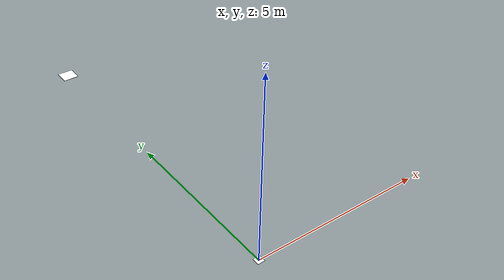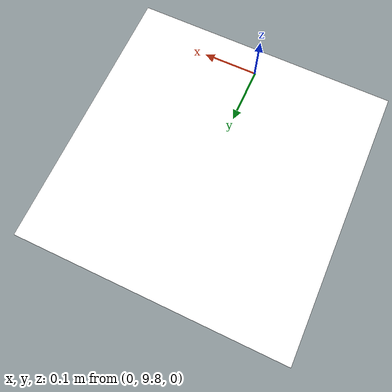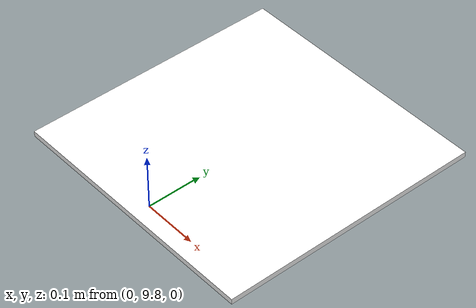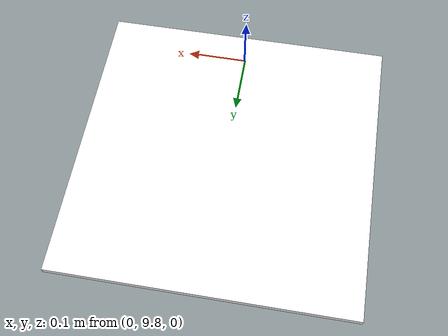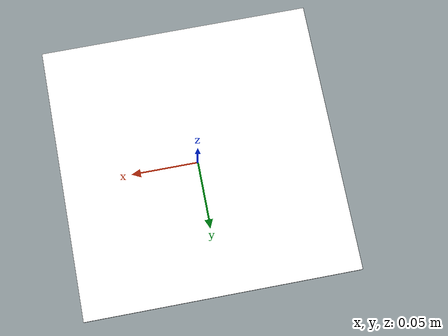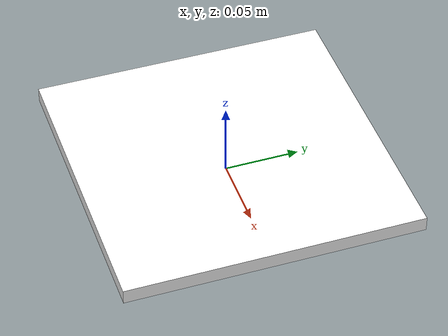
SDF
<?xml version="1.0" ?>
<sdf version="1.9">
  <world name="basic">
    <physics name="1ms" type="ignore">
        <max_step_size>0.001</max_step_size>
        <real_time_factor>1.0</real_time_factor>
    </physics>

    <scene>
      <ambient>1.0 1.0 1.0</ambient>
      <background>0.8 0.8 0.8</background>
      <sky></sky>
    </scene>

    <spherical_coordinates>
      <latitude_deg>41.56325902119428</latitude_deg>
      <longitude_deg>2.023199508200687</longitude_deg>
      <elevation>298.5</elevation>
      <heading_deg>0</heading_deg>
      <surface_model>EARTH_WGS84</surface_model>
    </spherical_coordinates>

    <light type="directional" name="sun">
      <cast_shadows>true</cast_shadows>
      <pose>0 0 10 0 0 0</pose>
      <diffuse>0.8 0.8 0.8 1</diffuse>
      <specular>0.8 0.8 0.8 1</specular>
      <attenuation>
        <range>1000</range>
        <constant>0.9</constant>
        <linear>0.01</linear>
        <quadratic>0.001</quadratic>
      </attenuation>
      <direction>-0.5 0.1 -0.9</direction>
    </light>

    <model name="axes">
      <static>1</static>
      <link name="link">
        <sensor name="navsat_sensor" type="navsat">
          <always_on>1</always_on>
          <update_rate>1</update_rate>
        </sensor>
      </link>
    </model>

    <include>
      <uri>model://aruco_marker_23</uri>
      <pose degrees="true">0 0 0.01 0 0 90</pose>
    </include>

    <include>
      <uri>model://aruco_marker_49</uri>
      <pose degrees="true">0 10 0.01 0 0 90</pose>
    </include>

  </world>
</sdf>

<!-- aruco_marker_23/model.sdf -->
<sdf version="1.9">
  <model name="aruco_marker_23">
    <static>true</static>
    <link name="link">
      <visual name="visual">
        <geometry>
          <box>
            <size>0.2 0.2 0.01</size>
          </box>
        </geometry>
        <material>
          <ambient>1 1 1 1</ambient>
          <diffuse>1 1 1 1</diffuse>
          <specular>0 0 0 1</specular>
          <pbr>
            <metal>
              <albedo_map>materials/textures/marker_23.png</albedo_map>
              <roughness>0.6</roughness>
              <metalness>0</metalness>
            </metal>
          </pbr>
        </material>
      </visual>
      <collision name="collision">
        <geometry>
          <box>
            <size>0.2 0.2 0.01</size>
          </box>
        </geometry>
      </collision>
    </link>
  </model>
</sdf>

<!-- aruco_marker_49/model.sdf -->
<sdf version="1.9">
  <model name="aruco_marker_49">
    <static>true</static>
    <link name="link">
      <visual name="visual">
        <geometry>
          <box>
            <size>0.48 0.48 0.01</size>
          </box>
        </geometry>
        <material>
          <ambient>1 1 1 1</ambient>
          <diffuse>1 1 1 1</diffuse>
          <specular>0 0 0 1</specular>
          <pbr>
            <metal>
              <albedo_map>materials/textures/marker_49.png</albedo_map>
              <roughness>0.6</roughness>
              <metalness>0</metalness>
            </metal>
          </pbr>
        </material>
      </visual>
      <collision name="collision">
        <geometry>
          <box>
            <size>1.0 1.0 0.01</size>
          </box>
        </geometry>
      </collision>
    </link>
  </model>
</sdf>
